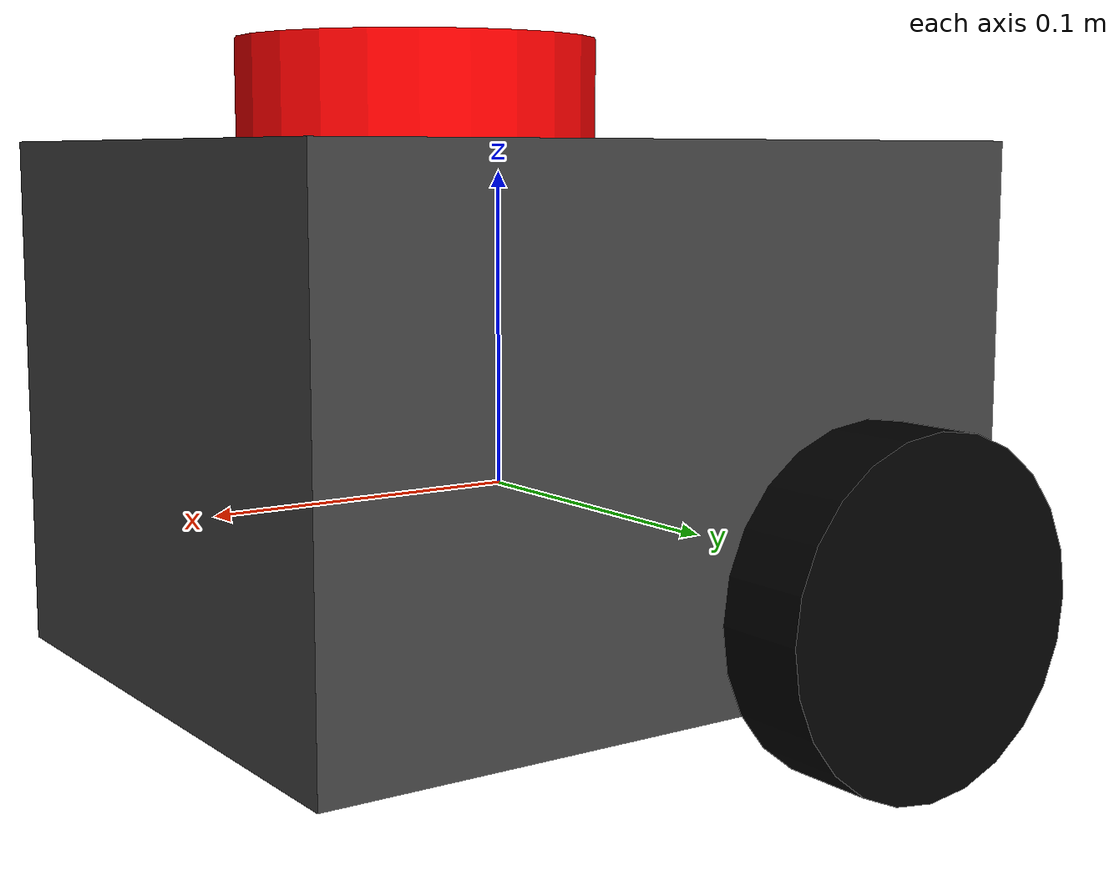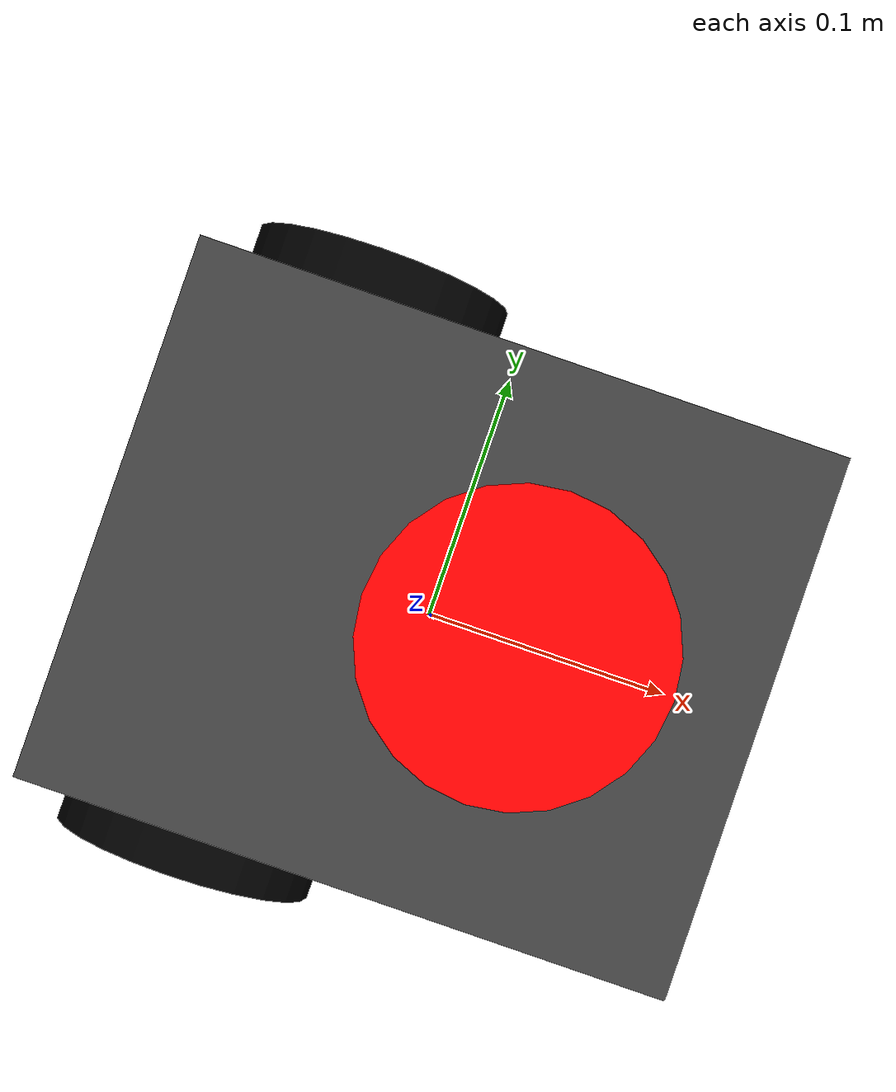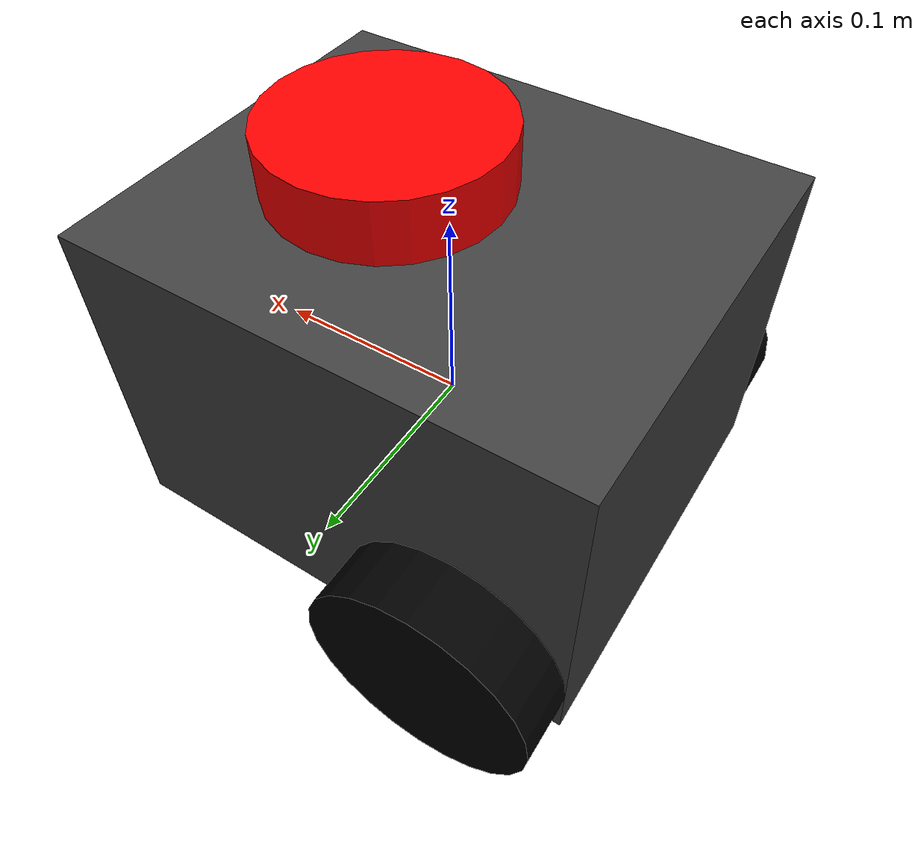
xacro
<?xml version="1.0"?>

<robot name="cleanbit" xmlns:xacro="http://www.ros.org/wiki/xacro">

    <!-- Robot Parameters -->
    <xacro:property name="PI" value="3.14159265"/>
    <xacro:property name="body_length" value="0.24"/>
    <xacro:property name="body_width" value="0.2"/>
    <xacro:property name="body_height" value="0.165"/>
    <xacro:property name="body_density" value="7850.0"/> <!-- Steel -->
    <xacro:property name="body_mass" value="${body_density * body_length * body_height * body_width}"/>
    <xacro:property name="body_inertia_x" value="${1.0/12.0 * body_mass * (body_height*body_height + body_width*body_width)}"/>
    <xacro:property name="body_inertia_y" value="${1.0/12.0 * body_mass * (body_length*body_length + body_height*body_height)}"/>
    <xacro:property name="body_inertia_z" value="${1.0/12.0 * body_mass * (body_length*body_length + body_width*body_width)}"/>

    <xacro:property name="wheel_radius" value="0.055"/>
    <xacro:property name="wheel_width" value="0.03"/>
    <xacro:property name="wheel_separation" value="${body_width + wheel_width}"/>
    <xacro:property name="wheel_offset" value="${body_length/2 - wheel_radius}"/>
    <xacro:property name="wheel_density" value="900"/> <!-- Ruber -->
    <xacro:property name="wheel_mass" value="${wheel_density * PI * wheel_radius * wheel_radius * wheel_width}"/>
    <xacro:property name="wheel_inertia_x" value="${1.0/12.0 * wheel_mass * (3*wheel_radius*wheel_radius + wheel_width*wheel_width)}"/>
    <xacro:property name="wheel_inertia_y" value="${1.0/12.0 * wheel_mass * (3*wheel_radius*wheel_radius + wheel_width*wheel_width)}"/>
    <xacro:property name="wheel_inertia_z" value="${1.0/2.0 * wheel_mass * wheel_radius * wheel_radius}"/>

    <xacro:property name="caster_radius" value="0.055"/>
    <xacro:property name="caster_offset" value="${body_length/2 - caster_radius}"/>
    <xacro:property name="caster_density" value="0.1"/>
    <xacro:property name="caster_mass" value="${caster_density * 4.0/3.0 * PI * caster_radius * caster_radius * caster_radius}"/>
    <xacro:property name="caster_inertia_x" value="${2.0/5.0 * caster_mass * caster_radius * caster_radius}"/>
    <xacro:property name="caster_inertia_y" value="${2.0/5.0 * caster_mass * caster_radius * caster_radius}"/>
    <xacro:property name="caster_inertia_z" value="${2.0/5.0 * caster_mass * caster_radius * caster_radius}"/>

    <!-- Control Parameters -->
    <xacro:property name="max_linear_acceleration" value="10"/>

    <!-- Links -->

    <!-- Body Link -->
    <link name="body_link">
        <visual>
            <origin xyz="0.0 0.0 0.027" rpy="0.0 0.0 0.0"/>
            <geometry>
                <box size="${body_length} ${body_width} ${body_height}"/>
            </geometry>
            <material name="body_material">
                <color rgba="0.25 0.25 0.25 1.0"/>
            </material>
        </visual>
        <collision>
            <origin xyz="0.0 0.0 0.027" rpy="0.0 0.0 0.0"/>
            <geometry>
                <box size="${body_length} ${body_width} ${body_height}"/>
            </geometry>
        </collision>
        <inertial>
            <mass value="10"/>
            <inertia ixx="${body_inertia_x}" ixy="0.0" ixz="0.0" iyy="${body_inertia_y}" iyz="0" izz="${body_inertia_z}"/>
            <origin xyz="0 0 0.027" rpy="0 0 0"/>
        </inertial>
    </link>

    <!-- Base Footprint -->
    <joint name="base_footprint_joint" type="fixed">
        <parent link="body_link"/>
        <child link="base_footprint"/>
        <origin xyz="0 0 0" rpy="0 0 0"/>
    </joint>

    <link name="base_footprint">
    </link>

    <!-- Left Wheel -->
    <link name="left_wheel_link">
        <visual>
            <origin xyz="0.0 0.0 0.0" rpy="1.570795 0.0 0.0"/>
            <geometry>
                <cylinder radius="${wheel_radius}" length="${wheel_width}"/>
            </geometry>
            <material name="wheel_material">
                <color rgba="0.0 0.0 0.0 1.0"/>
            </material>
        </visual>
        <collision>
            <origin xyz="0.0 0.0 0.0" rpy="1.570795 0.0 0.0"/>
            <geometry>
                <cylinder radius="${wheel_radius}" length="${wheel_width}"/>
            </geometry>
        </collision>
        <inertial>
            <mass value="2"/>
            <inertia ixx="${wheel_inertia_x}" ixy="0.0" ixz="0.0" iyy="${wheel_inertia_y}" iyz="0" izz="${wheel_inertia_z}"/>
            <origin xyz="0.0 0.0 0.0" rpy="1.570795 0.0 0.0"/>
        </inertial>
    </link>

    <!-- Right Wheel -->
    <link name="right_wheel_link">
        <visual>
            <origin xyz="0.0 0.0 0.0" rpy="1.570795 0.0 0.0"/>
            <geometry>
                <cylinder radius="${wheel_radius}" length="${wheel_width}"/>
            </geometry>
            <material name="wheel_material">
                <color rgba="0.0 0.0 0.0 1.0"/>
            </material>
        </visual>
        <collision>
            <origin xyz="0.0 0.0 0.0" rpy="1.570795 0.0 0.0"/>
            <geometry>
                <cylinder radius="${wheel_radius}" length="${wheel_width}"/>
            </geometry>
        </collision>
        <inertial>
            <mass value="2"/>
            <inertia ixx="${wheel_inertia_x}" ixy="0.0" ixz="0.0" iyy="${wheel_inertia_y}" iyz="0" izz="${wheel_inertia_z}"/>
            <origin xyz="0.0 0.0 0.0" rpy="1.570795 0.0 0.0"/>
        </inertial>
    </link>

    <!-- Caster Wheel -->
    <link name="caster_link">
        <visual>
            <origin xyz="0.0 0.0 0.0" rpy="0.0 0.0 0.0"/>
            <geometry>
                <sphere radius="${caster_radius}"/>
            </geometry>
            <material name="caster_material">
                <color rgba="0.0 0.0 0.0 1.0"/>
            </material>
        </visual>
        <collision>
            <origin xyz="0.0 0.0 0.0" rpy="0.0 0.0 0.0"/>
            <geometry>
                <sphere radius="${caster_radius}"/>
            </geometry>
        </collision>
        <inertial>
            <mass value="0.5"/>
            <inertia ixx="${caster_inertia_x}" ixy="0.0" ixz="0.0" iyy="${caster_inertia_y}" iyz="0" izz="${caster_inertia_z}"/>
            <origin xyz="0 0 0" rpy="0 0 0"/>
        </inertial>
    </link>

    <!-- LIDAR -->

    <link name="laser_frame">
        <visual>
            <origin xyz="0.0 0.0 0.0" rpy="0.0 0.0 0.0"/>
            <geometry>
                <cylinder radius="${wheel_radius}" length="${wheel_width}"/>
            </geometry>
            <material name="wheel_material">
                <color rgba="1.0 0.0 0.0 0.0"/>
            </material>
        </visual>
        <collision>
            <origin xyz="0.0 0.0 0.0" rpy="0.0 0.0 0.0"/>
            <geometry>
                <cylinder radius="${wheel_radius}" length="${wheel_width}"/>
            </geometry>
        </collision>
        <inertial>
            <mass value="2"/>
            <inertia ixx="${wheel_inertia_x}" ixy="0.0" ixz="0.0" iyy="${wheel_inertia_y}" iyz="0" izz="${wheel_inertia_z}"/>
            <origin xyz="0.0 0.0 0.0" rpy="0.0 0.0 0.0"/>
        </inertial>

    </link>

    <!-- Joints -->

    <!-- Left Wheel Joint -->
    <joint name="left_wheel_joint" type="continuous">
        <origin xyz="-${wheel_offset} ${wheel_separation/2} -${wheel_radius/2}" rpy="0 0 0"/>
        <parent link="body_link"/>
        <child link="left_wheel_link"/>
        <axis xyz="0 1 0"/>
        <limit effort="100" velocity="10.0"/>
        <dynamics damping="0.1" friction="0.1"/>
    </joint>

    <!-- Right Wheel Joint -->
    <joint name="right_wheel_joint" type="continuous">
        <origin xyz="-${wheel_offset} ${-wheel_separation/2} -${wheel_radius/2}" rpy="0 0 0"/>
        <parent link="body_link"/>
        <child link="right_wheel_link"/>
        <axis xyz="0 1 0"/>
        <limit effort="100" velocity="10.0"/>
        <dynamics damping="0.1" friction="0.1"/>
    </joint>

    <!-- Caster Wheel Joint (fixed) -->
    <joint name="caster_joint" type="fixed">
        <origin xyz="${caster_offset} 0 -${caster_radius/2}" rpy="0 0 0"/>
        <parent link="body_link"/>
        <child link="caster_link"/>
    </joint>

    <!-- LIDAR -->
     <joint name="laser_joint" type="fixed">
        <parent link="body_link"/>
        <child link="laser_frame"/>
        <origin xyz="0.03 0 0.125" rpy="0 0 0"/>
     </joint>

    <!-- Gazebo Parameters -->
    <gazebo reference="body_link">
        <mu1>1.0</mu1>
        <mu2>1.0</mu2>
    </gazebo>

    <gazebo reference="right_wheel_link">
        <mu1>1.0</mu1>
        <mu2>1.0</mu2>
    </gazebo>

    <gazebo reference="left_wheel_link">
        <mu1>1.0</mu1>
        <mu2>1.0</mu2>
    </gazebo>

    <gazebo reference="caster_link">
        <mu1>0.000001</mu1>
        <mu2>0.000001</mu2>
    </gazebo>

    <!-- LIDAR -->
    <gazebo reference="laser_frame" >
        <sensor name="laser_frame" type="gpu_lidar">
          <topic>scan</topic>
          <update_rate>30</update_rate>
          <gz_frame_id>laser_frame</gz_frame_id>
          <lidar>
            <scan>
              <horizontal>
                <samples>2800</samples>
                <resolution>1</resolution>
                <min_angle>-3.14</min_angle>
                <max_angle>3.14</max_angle>
              </horizontal>
              <vertical>
                <samples>1</samples>
                <resolution>0.1</resolution>
                <min_angle>0.0</min_angle>
                <max_angle>0.0</max_angle>
              </vertical>
            </scan>
            <range>
              <min>0.2</min>
              <max>30.0</max>
              <resolution>0.01</resolution>
            </range>
          </lidar>
          <visualize>true</visualize>
        </sensor>
      </gazebo>
    <!-- Gazebo Plugins -->

    <gazebo>
        <plugin filename="gz-sim-diff-drive-system" name="gz::sim::systems::DiffDrive">
            <right_joint>right_wheel_joint</right_joint>
            <left_joint>left_wheel_joint</left_joint>
            <wheel_separation>${wheel_separation}</wheel_separation>
            <wheel_radius>${wheel_radius}</wheel_radius>
            <max_linear_acceleration>${max_linear_acceleration}</max_linear_acceleration>
            <odom_publish_frequency>100</odom_publish_frequency>
            <topic>cmd_vel</topic>
            <odom_topic>odom</odom_topic>
            <odometry_frame>odom</odometry_frame>
            <robot_base_frame>body_link</robot_base_frame>
        </plugin>

        <plugin filename="gz-sim-joint-state-publisher-system" name="gz::sim::systems::JointStatePublisher">
            <topic>joint_states</topic>
            <joint_name>right_wheel_joint</joint_name>
            <joint_name>left_wheel_joint</joint_name>
        </plugin>
    </gazebo>
    <gazebo>
        <plugin filename="gz-sim-sensors-system" name="gz::sim::systems::Sensors">
          <render_engine>ogre2</render_engine>
        </plugin>
      </gazebo>

</robot>
